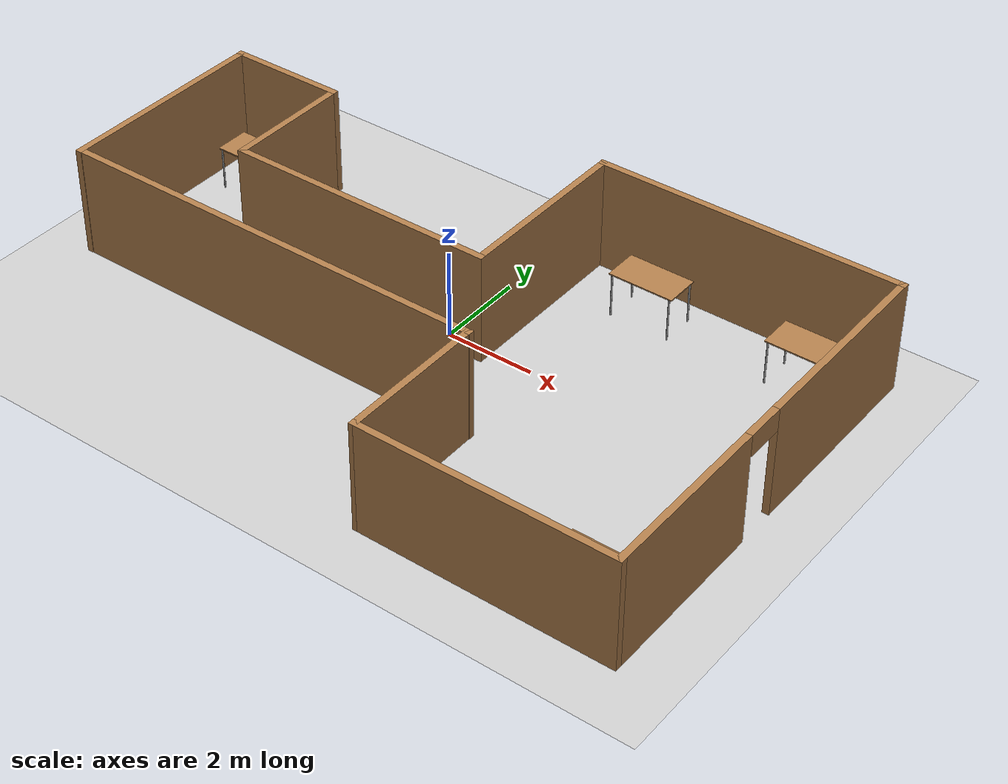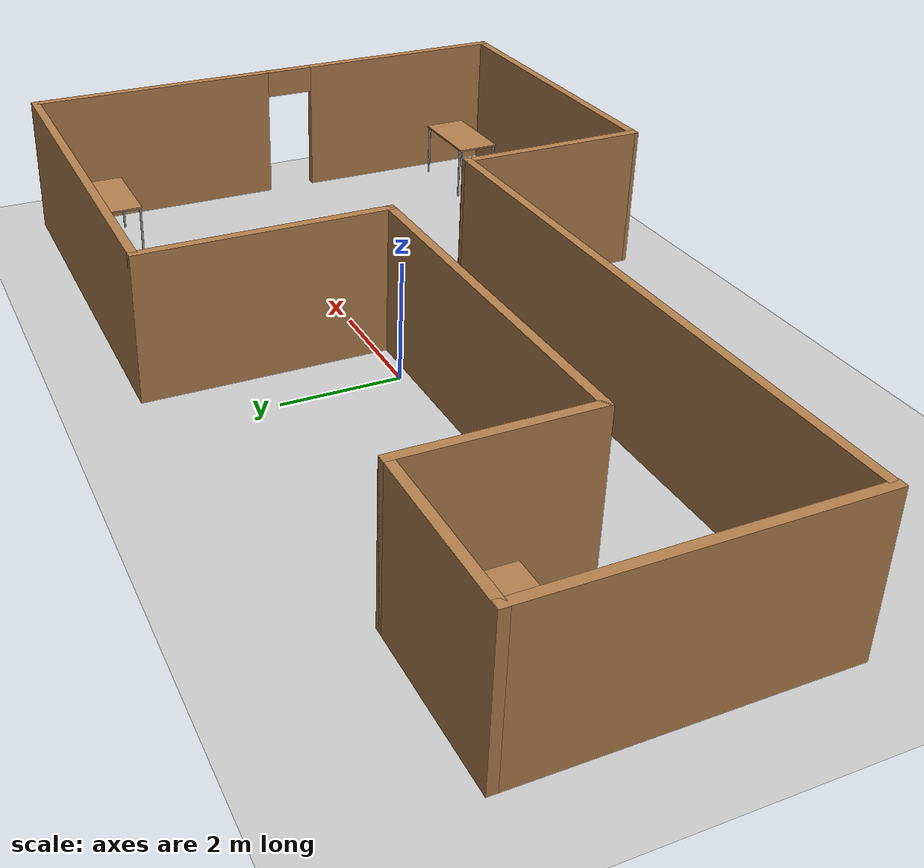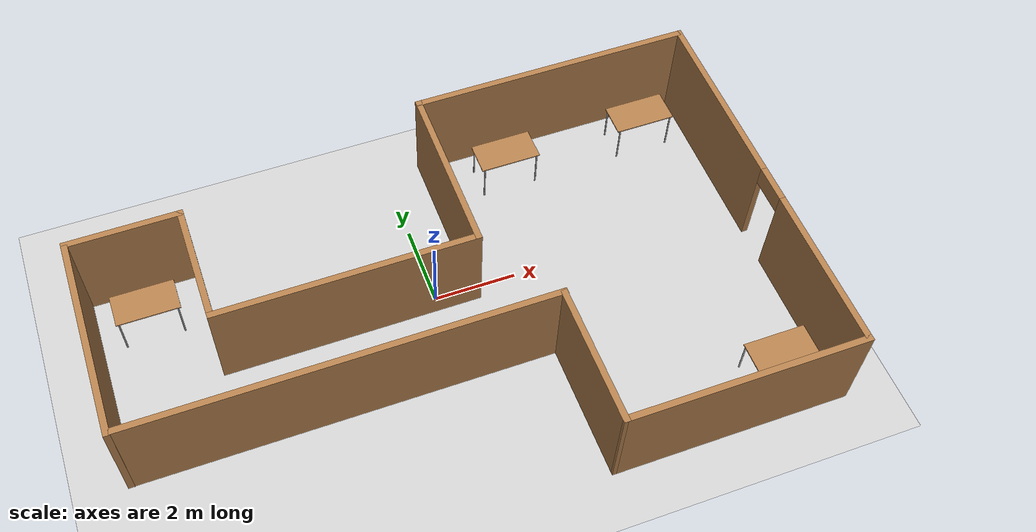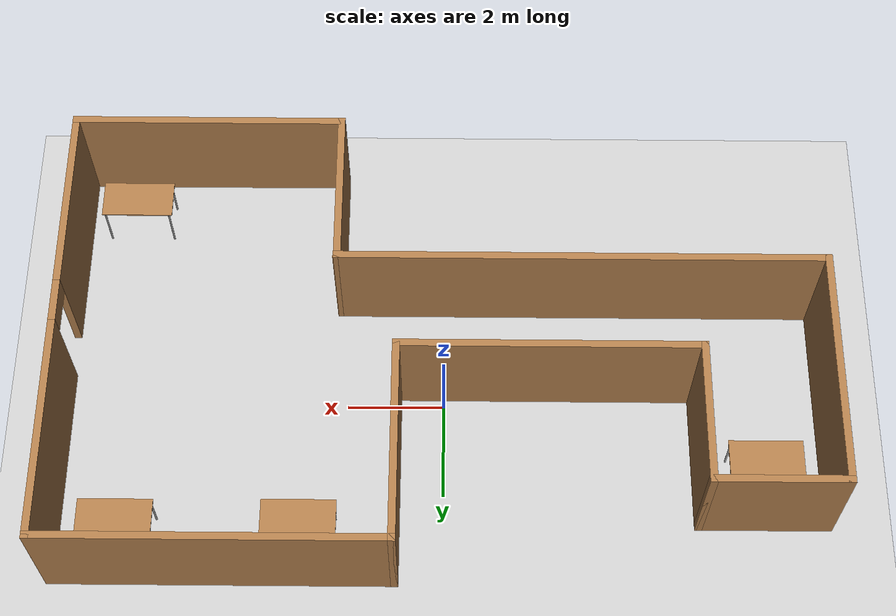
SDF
<sdf version="1.6">
 <world name="default">
  <light name="sun" type="directional">
   <pose>0 0 10 0 -0 0</pose>
   <diffuse>0.8 0.8 0.8 1</diffuse>
   <specular>0.2 0.2 0.2 1</specular>
   <attenuation>
    <range>1000</range>
    <constant>0.9</constant>
    <linear>0.01</linear>
    <quadratic>0.001</quadratic>
   </attenuation>
   <direction>-0.5 0.1 -0.9</direction>
   <spot><inner_angle>0</inner_angle><outer_angle>0</outer_angle><falloff>0</falloff></spot>
  </light>
  <model name="ground_plane">
   <static>1</static>
   <link name="link">
    <collision name="collision">
     <geometry><plane><normal>0 0 1</normal><size>100 100</size></plane></geometry>
     <surface>
      <contact><collide_bitmask>65535</collide_bitmask></contact>
      <friction><ode><mu>100</mu><mu2>50</mu2></ode></friction>
     </surface>
    </collision>
    <visual name="visual">
     <cast_shadows>0</cast_shadows>
     <geometry><plane><normal>0 0 1</normal><size>100 100</size></plane></geometry>
     <material>
      <script><uri>file://media/materials/scripts/gazebo.material</uri><name>Gazebo/Grey</name></script>
     </material>
    </visual>
   </link>
  </model>
  <gravity>0 0 -9.8</gravity>
  <magnetic_field>6e-06 2.3e-05 -4.2e-05</magnetic_field>
  <atmosphere type="adiabatic"/>
  <physics name="default_physics" default="0" type="ode">
   <max_step_size>0.001</max_step_size>
   <real_time_factor>1</real_time_factor>
   <real_time_update_rate>1000</real_time_update_rate>
  </physics>
  <scene><ambient>0.4 0.4 0.4 1</ambient><background>0.7 0.7 0.7 1</background><shadows>1</shadows></scene>
  <spherical_coordinates>
   <surface_model>EARTH_WGS84</surface_model>
   <latitude_deg>0</latitude_deg>
   <longitude_deg>0</longitude_deg>
   <elevation>0</elevation>
   <heading_deg>0</heading_deg>
  </spherical_coordinates>
  <model name="building">
   <pose>0.01839 -0.458464 0 0 -0 0</pose>
   <link name="Wall_0">
    <collision name="Wall_0_Collision">
     <geometry><box><size>5 0.15 2.5</size></box></geometry>
     <pose>0 0 1.25 0 -0 0</pose>
    </collision>
    <visual name="Wall_0_Visual">
     <pose>0 0 1.25 0 -0 0</pose>
     <geometry><box><size>5 0.15 2.5</size></box></geometry>
     <material>
      <script><uri>file://media/materials/scripts/gazebo.material</uri><name>Gazebo/Wood</name></script>
      <ambient>1 1 1 1</ambient>
     </material>
     <meta><layer>0</layer></meta>
    </visual>
    <pose>-7.78488 0.627645 0 0 -0 1.5708</pose>
   </link>
   <link name="Wall_1">
    <collision name="Wall_1_Collision">
     <geometry><box><size>2.77048 0.15 2.5</size></box></geometry>
     <pose>0 0 1.25 0 -0 0</pose>
    </collision>
    <visual name="Wall_1_Visual">
     <pose>0 0 1.25 0 -0 0</pose>
     <geometry><box><size>2.77048 0.15 2.5</size></box></geometry>
     <material>
      <script><uri>file://media/materials/scripts/gazebo.material</uri><name>Gazebo/Wood</name></script>
      <ambient>1 1 1 1</ambient>
     </material>
     <meta><layer>0</layer></meta>
    </visual>
    <pose>-6.47488 3.06265 0 0 -0 0</pose>
   </link>
   <link name="Wall_2">
    <collision name="Wall_2_Collision">
     <geometry><box><size>3 0.15 2.5</size></box></geometry>
     <pose>0 0 1.25 0 -0 0</pose>
    </collision>
    <visual name="Wall_2_Visual">
     <pose>0 0 1.25 0 -0 0</pose>
     <geometry><box><size>3 0.15 2.5</size></box></geometry>
     <material>
      <script><uri>file://media/materials/scripts/gazebo.material</uri><name>Gazebo/Wood</name></script>
      <ambient>1 1 1 1</ambient>
     </material>
     <meta><layer>0</layer></meta>
    </visual>
    <pose>-5.16488 1.63765 0 0 -0 -1.5708</pose>
   </link>
   <link name="Wall_3">
    <collision name="Wall_3_Collision">
     <geometry><box><size>6.25 0.15 2.5</size></box></geometry>
     <pose>0 0 1.25 0 -0 0</pose>
    </collision>
    <visual name="Wall_3_Visual">
     <pose>0 0 1.25 0 -0 0</pose>
     <geometry><box><size>6.25 0.15 2.5</size></box></geometry>
     <material>
      <script><uri>file://media/materials/scripts/gazebo.material</uri><name>Gazebo/Wood</name></script>
      <ambient>1 1 1 1</ambient>
     </material>
     <meta><layer>0</layer></meta>
    </visual>
    <pose>-2.11488 0.212646 0 0 -0 0</pose>
   </link>
   <link name="Wall_4">
    <collision name="Wall_4_Collision">
     <geometry><box><size>4.25 0.15 2.5</size></box></geometry>
     <pose>0 0 1.25 0 -0 0</pose>
    </collision>
    <visual name="Wall_4_Visual">
     <pose>0 0 1.25 0 -0 0</pose>
     <geometry><box><size>4.25 0.15 2.5</size></box></geometry>
     <material>
      <script><uri>file://media/materials/scripts/gazebo.material</uri><name>Gazebo/Wood</name></script>
      <ambient>1 1 1 1</ambient>
     </material>
     <meta><layer>0</layer></meta>
    </visual>
    <pose>0.935119 2.26265 0 0 -0 1.5708</pose>
   </link>
   <link name="Wall_5">
    <collision name="Wall_5_Collision">
     <geometry><box><size>7 0.15 2.5</size></box></geometry>
     <pose>0 0 1.25 0 -0 0</pose>
    </collision>
    <visual name="Wall_5_Visual">
     <pose>0 0 1.25 0 -0 0</pose>
     <geometry><box><size>7 0.15 2.5</size></box></geometry>
     <material>
      <script><uri>file://media/materials/scripts/gazebo.material</uri><name>Gazebo/Wood</name></script>
      <ambient>1 1 1 1</ambient>
     </material>
     <meta><layer>0</layer></meta>
    </visual>
    <pose>4.36012 4.31265 0 0 -0 0</pose>
   </link>
   <link name="Wall_6">
    <pose>7.78512 -0.362354 0 0 -0 -1.5708</pose>
    <visual name="Wall_6_Visual_0">
     <pose>-2.4375 0 1.25 0 -0 0</pose>
     <geometry><box><size>4.625 0.15 2.5</size></box></geometry>
     <material>
      <script><uri>file://media/materials/scripts/gazebo.material</uri><name>Gazebo/Wood</name></script>
      <ambient>0.760784 0.662745 0.627451 1</ambient>
     </material>
     <meta><layer>0</layer></meta>
    </visual>
    <collision name="Wall_6_Collision_0">
     <geometry><box><size>4.625 0.15 2.5</size></box></geometry>
     <pose>-2.4375 0 1.25 0 -0 0</pose>
    </collision>
    <visual name="Wall_6_Visual_1">
     <pose>2.7625 0 1.25 0 -0 0</pose>
     <geometry><box><size>3.975 0.15 2.5</size></box></geometry>
     <material>
      <script><uri>file://media/materials/scripts/gazebo.material</uri><name>Gazebo/Wood</name></script>
      <ambient>0.760784 0.662745 0.627451 1</ambient>
     </material>
     <meta><layer>0</layer></meta>
    </visual>
    <collision name="Wall_6_Collision_1">
     <geometry><box><size>3.975 0.15 2.5</size></box></geometry>
     <pose>2.7625 0 1.25 0 -0 0</pose>
    </collision>
    <visual name="Wall_6_Visual_2">
     <pose>0.325 0 2.25 0 -0 0</pose>
     <geometry><box><size>0.9 0.15 0.5</size></box></geometry>
     <material>
      <script><uri>file://media/materials/scripts/gazebo.material</uri><name>Gazebo/Wood</name></script>
      <ambient>0.760784 0.662745 0.627451 1</ambient>
     </material>
     <meta><layer>0</layer></meta>
    </visual>
    <collision name="Wall_6_Collision_2">
     <geometry><box><size>0.9 0.15 0.5</size></box></geometry>
     <pose>0.325 0 2.25 0 -0 0</pose>
    </collision>
   </link>
   <link name="Wall_7">
    <collision name="Wall_7_Collision">
     <geometry><box><size>5.75 0.15 2.5</size></box></geometry>
     <pose>0 0 1.25 0 -0 0</pose>
    </collision>
    <visual name="Wall_7_Visual">
     <pose>0 0 1.25 0 -0 0</pose>
     <geometry><box><size>5.75 0.15 2.5</size></box></geometry>
     <material>
      <script><uri>file://media/materials/scripts/gazebo.material</uri><name>Gazebo/Wood</name></script>
      <ambient>1 1 1 1</ambient>
     </material>
     <meta><layer>0</layer></meta>
    </visual>
    <pose>4.98512 -5.03735 0 0 -0 3.14159</pose>
   </link>
   <link name="Wall_8">
    <collision name="Wall_8_Collision">
     <geometry><box><size>3.40014 0.15 2.5</size></box></geometry>
     <pose>0 0 1.25 0 -0 0</pose>
    </collision>
    <visual name="Wall_8_Visual">
     <pose>0 0 1.25 0 -0 0</pose>
     <geometry><box><size>3.40014 0.15 2.5</size></box></geometry>
     <material>
      <script><uri>file://media/materials/scripts/gazebo.material</uri><name>Gazebo/Wood</name></script>
      <ambient>1 1 1 1</ambient>
     </material>
     <meta><layer>0</layer></meta>
    </visual>
    <pose>2.18012 -3.41235 0 0 -0 1.57387</pose>
   </link>
   <link name="Wall_9">
    <collision name="Wall_9_Collision">
     <geometry><box><size>10 0.15 2.5</size></box></geometry>
     <pose>0 0 1.25 0 -0 0</pose>
    </collision>
    <visual name="Wall_9_Visual">
     <pose>0 0 1.25 0 -0 0</pose>
     <geometry><box><size>10 0.15 2.5</size></box></geometry>
     <material>
      <script><uri>file://media/materials/scripts/gazebo.material</uri><name>Gazebo/Wood</name></script>
      <ambient>1 1 1 1</ambient>
     </material>
     <meta><layer>0</layer></meta>
    </visual>
    <pose>-2.73988 -1.78735 0 0 -0 3.14159</pose>
   </link>
   <static>1</static>
  </model>
  <model name="table">
   <static>1</static>
   <link name="link">
    <collision name="surface">
     <pose>0 0 1 0 -0 0</pose>
     <geometry><box><size>1.5 0.8 0.03</size></box></geometry>
     <surface><friction><ode><mu>0.6</mu><mu2>0.6</mu2></ode></friction></surface>
    </collision>
    <visual name="visual1">
     <pose>0 0 1 0 -0 0</pose>
     <geometry><box><size>1.5 0.8 0.03</size></box></geometry>
     <material>
      <script><uri>file://media/materials/scripts/gazebo.material</uri><name>Gazebo/Wood</name></script>
     </material>
    </visual>
    <collision name="front_left_leg">
     <pose>0.68 0.38 0.5 0 -0 0</pose>
     <geometry><cylinder><radius>0.02</radius><length>1</length></cylinder></geometry>
    </collision>
    <visual name="front_left_leg">
     <pose>0.68 0.38 0.5 0 -0 0</pose>
     <geometry><cylinder><radius>0.02</radius><length>1</length></cylinder></geometry>
     <material>
      <script><uri>file://media/materials/scripts/gazebo.material</uri><name>Gazebo/Grey</name></script>
     </material>
    </visual>
    <collision name="front_right_leg">
     <pose>0.68 -0.38 0.5 0 -0 0</pose>
     <geometry><cylinder><radius>0.02</radius><length>1</length></cylinder></geometry>
    </collision>
    <visual name="front_right_leg">
     <pose>0.68 -0.38 0.5 0 -0 0</pose>
     <geometry><cylinder><radius>0.02</radius><length>1</length></cylinder></geometry>
     <material>
      <script><uri>file://media/materials/scripts/gazebo.material</uri><name>Gazebo/Grey</name></script>
     </material>
    </visual>
    <collision name="back_right_leg">
     <pose>-0.68 -0.38 0.5 0 -0 0</pose>
     <geometry><cylinder><radius>0.02</radius><length>1</length></cylinder></geometry>
    </collision>
    <visual name="back_right_leg">
     <pose>-0.68 -0.38 0.5 0 -0 0</pose>
     <geometry><cylinder><radius>0.02</radius><length>1</length></cylinder></geometry>
     <material>
      <script><uri>file://media/materials/scripts/gazebo.material</uri><name>Gazebo/Grey</name></script>
     </material>
    </visual>
    <collision name="back_left_leg">
     <pose>-0.68 0.38 0.5 0 -0 0</pose>
     <geometry><cylinder><radius>0.02</radius><length>1</length></cylinder></geometry>
    </collision>
    <visual name="back_left_leg">
     <pose>-0.68 0.38 0.5 0 -0 0</pose>
     <geometry><cylinder><radius>0.02</radius><length>1</length></cylinder></geometry>
     <material>
      <script><uri>file://media/materials/scripts/gazebo.material</uri><name>Gazebo/Grey</name></script>
     </material>
    </visual>
   </link>
   <pose>6.47443 2.90944 0 0 -0 0</pose>
  </model>
  <model name="table_0">
   <static>1</static>
   <link name="link">
    <collision name="surface">
     <pose>0 0 1 0 -0 0</pose>
     <geometry><box><size>1.5 0.8 0.03</size></box></geometry>
     <surface><friction><ode><mu>0.6</mu><mu2>0.6</mu2></ode></friction></surface>
    </collision>
    <visual name="visual1">
     <pose>0 0 1 0 -0 0</pose>
     <geometry><box><size>1.5 0.8 0.03</size></box></geometry>
     <material>
      <script><uri>file://media/materials/scripts/gazebo.material</uri><name>Gazebo/Wood</name></script>
     </material>
    </visual>
    <collision name="front_left_leg">
     <pose>0.68 0.38 0.5 0 -0 0</pose>
     <geometry><cylinder><radius>0.02</radius><length>1</length></cylinder></geometry>
    </collision>
    <visual name="front_left_leg">
     <pose>0.68 0.38 0.5 0 -0 0</pose>
     <geometry><cylinder><radius>0.02</radius><length>1</length></cylinder></geometry>
     <material>
      <script><uri>file://media/materials/scripts/gazebo.material</uri><name>Gazebo/Grey</name></script>
     </material>
    </visual>
    <collision name="front_right_leg">
     <pose>0.68 -0.38 0.5 0 -0 0</pose>
     <geometry><cylinder><radius>0.02</radius><length>1</length></cylinder></geometry>
    </collision>
    <visual name="front_right_leg">
     <pose>0.68 -0.38 0.5 0 -0 0</pose>
     <geometry><cylinder><radius>0.02</radius><length>1</length></cylinder></geometry>
     <material>
      <script><uri>file://media/materials/scripts/gazebo.material</uri><name>Gazebo/Grey</name></script>
     </material>
    </visual>
    <collision name="back_right_leg">
     <pose>-0.68 -0.38 0.5 0 -0 0</pose>
     <geometry><cylinder><radius>0.02</radius><length>1</length></cylinder></geometry>
    </collision>
    <visual name="back_right_leg">
     <pose>-0.68 -0.38 0.5 0 -0 0</pose>
     <geometry><cylinder><radius>0.02</radius><length>1</length></cylinder></geometry>
     <material>
      <script><uri>file://media/materials/scripts/gazebo.material</uri><name>Gazebo/Grey</name></script>
     </material>
    </visual>
    <collision name="back_left_leg">
     <pose>-0.68 0.38 0.5 0 -0 0</pose>
     <geometry><cylinder><radius>0.02</radius><length>1</length></cylinder></geometry>
    </collision>
    <visual name="back_left_leg">
     <pose>-0.68 0.38 0.5 0 -0 0</pose>
     <geometry><cylinder><radius>0.02</radius><length>1</length></cylinder></geometry>
     <material>
      <script><uri>file://media/materials/scripts/gazebo.material</uri><name>Gazebo/Grey</name></script>
     </material>
    </visual>
   </link>
   <pose>2.85109 2.89214 0 0 -0 0</pose>
  </model>
  <model name="table_1">
   <static>1</static>
   <link name="link">
    <collision name="surface">
     <pose>0 0 1 0 -0 0</pose>
     <geometry><box><size>1.5 0.8 0.03</size></box></geometry>
     <surface><friction><ode><mu>0.6</mu><mu2>0.6</mu2></ode></friction></surface>
    </collision>
    <visual name="visual1">
     <pose>0 0 1 0 -0 0</pose>
     <geometry><box><size>1.5 0.8 0.03</size></box></geometry>
     <material>
      <script><uri>file://media/materials/scripts/gazebo.material</uri><name>Gazebo/Wood</name></script>
     </material>
    </visual>
    <collision name="front_left_leg">
     <pose>0.68 0.38 0.5 0 -0 0</pose>
     <geometry><cylinder><radius>0.02</radius><length>1</length></cylinder></geometry>
    </collision>
    <visual name="front_left_leg">
     <pose>0.68 0.38 0.5 0 -0 0</pose>
     <geometry><cylinder><radius>0.02</radius><length>1</length></cylinder></geometry>
     <material>
      <script><uri>file://media/materials/scripts/gazebo.material</uri><name>Gazebo/Grey</name></script>
     </material>
    </visual>
    <collision name="front_right_leg">
     <pose>0.68 -0.38 0.5 0 -0 0</pose>
     <geometry><cylinder><radius>0.02</radius><length>1</length></cylinder></geometry>
    </collision>
    <visual name="front_right_leg">
     <pose>0.68 -0.38 0.5 0 -0 0</pose>
     <geometry><cylinder><radius>0.02</radius><length>1</length></cylinder></geometry>
     <material>
      <script><uri>file://media/materials/scripts/gazebo.material</uri><name>Gazebo/Grey</name></script>
     </material>
    </visual>
    <collision name="back_right_leg">
     <pose>-0.68 -0.38 0.5 0 -0 0</pose>
     <geometry><cylinder><radius>0.02</radius><length>1</length></cylinder></geometry>
    </collision>
    <visual name="back_right_leg">
     <pose>-0.68 -0.38 0.5 0 -0 0</pose>
     <geometry><cylinder><radius>0.02</radius><length>1</length></cylinder></geometry>
     <material>
      <script><uri>file://media/materials/scripts/gazebo.material</uri><name>Gazebo/Grey</name></script>
     </material>
    </visual>
    <collision name="back_left_leg">
     <pose>-0.68 0.38 0.5 0 -0 0</pose>
     <geometry><cylinder><radius>0.02</radius><length>1</length></cylinder></geometry>
    </collision>
    <visual name="back_left_leg">
     <pose>-0.68 0.38 0.5 0 -0 0</pose>
     <geometry><cylinder><radius>0.02</radius><length>1</length></cylinder></geometry>
     <material>
      <script><uri>file://media/materials/scripts/gazebo.material</uri><name>Gazebo/Grey</name></script>
     </material>
    </visual>
   </link>
   <pose>6.62971 -4.45803 0 0 -0 0</pose>
  </model>
  <model name="table_2">
   <static>1</static>
   <link name="link">
    <collision name="surface">
     <pose>0 0 1 0 -0 0</pose>
     <geometry><box><size>1.5 0.8 0.03</size></box></geometry>
     <surface><friction><ode><mu>0.6</mu><mu2>0.6</mu2></ode></friction></surface>
    </collision>
    <visual name="visual1">
     <pose>0 0 1 0 -0 0</pose>
     <geometry><box><size>1.5 0.8 0.03</size></box></geometry>
     <material>
      <script><uri>file://media/materials/scripts/gazebo.material</uri><name>Gazebo/Wood</name></script>
     </material>
    </visual>
    <collision name="front_left_leg">
     <pose>0.68 0.38 0.5 0 -0 0</pose>
     <geometry><cylinder><radius>0.02</radius><length>1</length></cylinder></geometry>
    </collision>
    <visual name="front_left_leg">
     <pose>0.68 0.38 0.5 0 -0 0</pose>
     <geometry><cylinder><radius>0.02</radius><length>1</length></cylinder></geometry>
     <material>
      <script><uri>file://media/materials/scripts/gazebo.material</uri><name>Gazebo/Grey</name></script>
     </material>
    </visual>
    <collision name="front_right_leg">
     <pose>0.68 -0.38 0.5 0 -0 0</pose>
     <geometry><cylinder><radius>0.02</radius><length>1</length></cylinder></geometry>
    </collision>
    <visual name="front_right_leg">
     <pose>0.68 -0.38 0.5 0 -0 0</pose>
     <geometry><cylinder><radius>0.02</radius><length>1</length></cylinder></geometry>
     <material>
      <script><uri>file://media/materials/scripts/gazebo.material</uri><name>Gazebo/Grey</name></script>
     </material>
    </visual>
    <collision name="back_right_leg">
     <pose>-0.68 -0.38 0.5 0 -0 0</pose>
     <geometry><cylinder><radius>0.02</radius><length>1</length></cylinder></geometry>
    </collision>
    <visual name="back_right_leg">
     <pose>-0.68 -0.38 0.5 0 -0 0</pose>
     <geometry><cylinder><radius>0.02</radius><length>1</length></cylinder></geometry>
     <material>
      <script><uri>file://media/materials/scripts/gazebo.material</uri><name>Gazebo/Grey</name></script>
     </material>
    </visual>
    <collision name="back_left_leg">
     <pose>-0.68 0.38 0.5 0 -0 0</pose>
     <geometry><cylinder><radius>0.02</radius><length>1</length></cylinder></geometry>
    </collision>
    <visual name="back_left_leg">
     <pose>-0.68 0.38 0.5 0 -0 0</pose>
     <geometry><cylinder><radius>0.02</radius><length>1</length></cylinder></geometry>
     <material>
      <script><uri>file://media/materials/scripts/gazebo.material</uri><name>Gazebo/Grey</name></script>
     </material>
    </visual>
   </link>
   <pose>-6.46608 1.54632 0 0 -0 0</pose>
  </model>
 </world>
</sdf>
